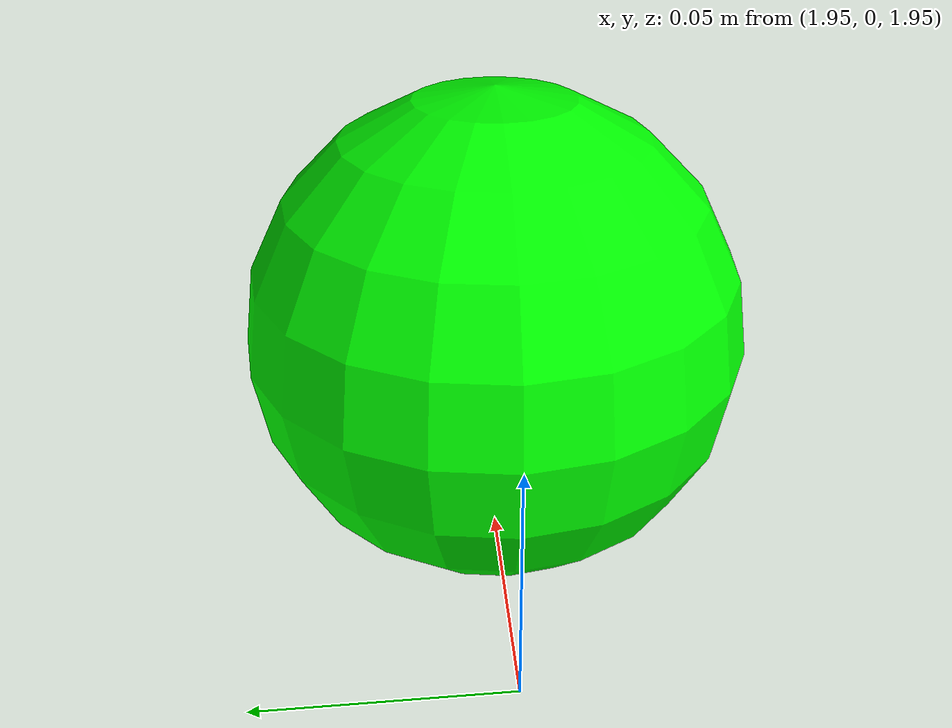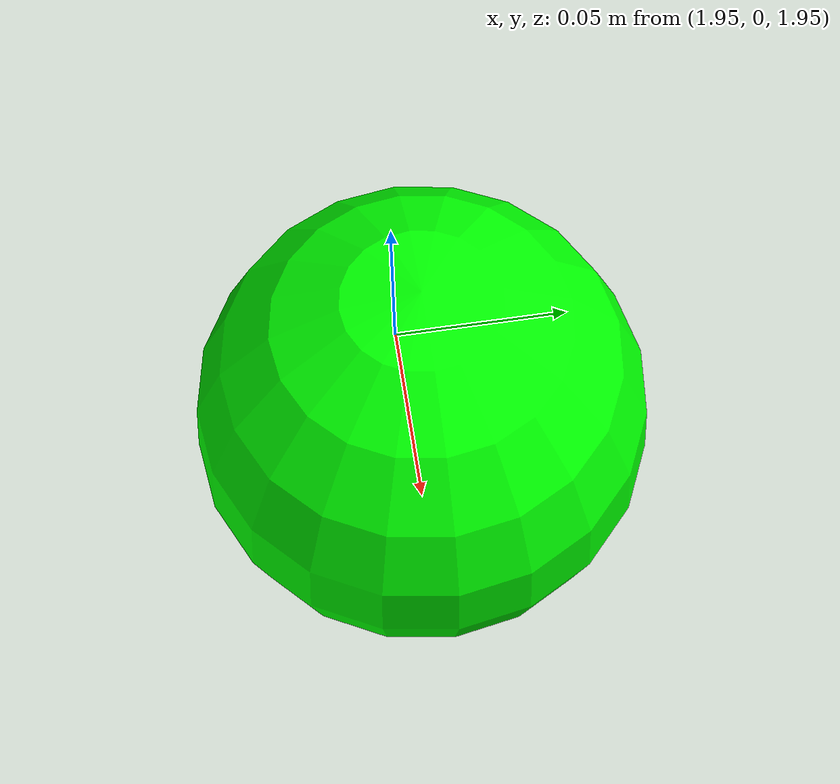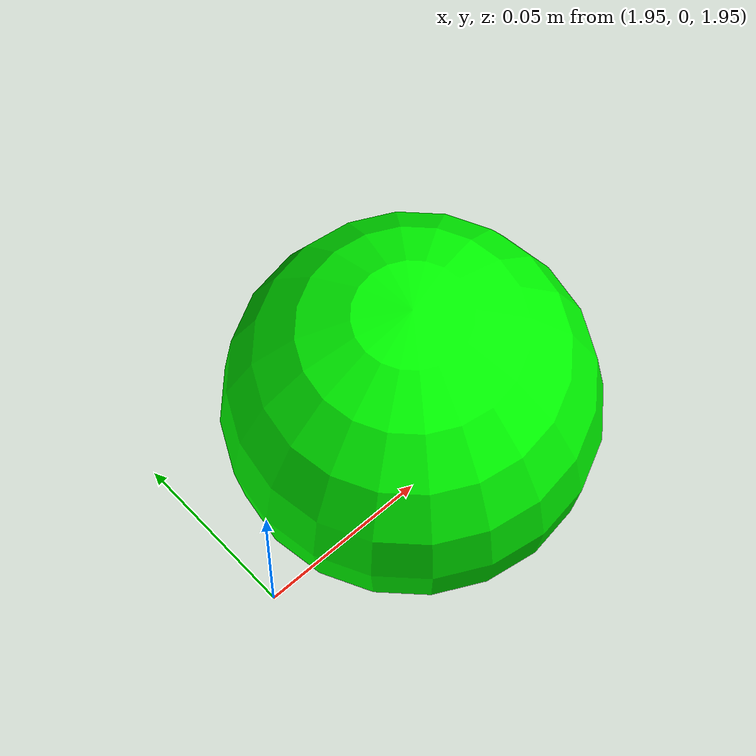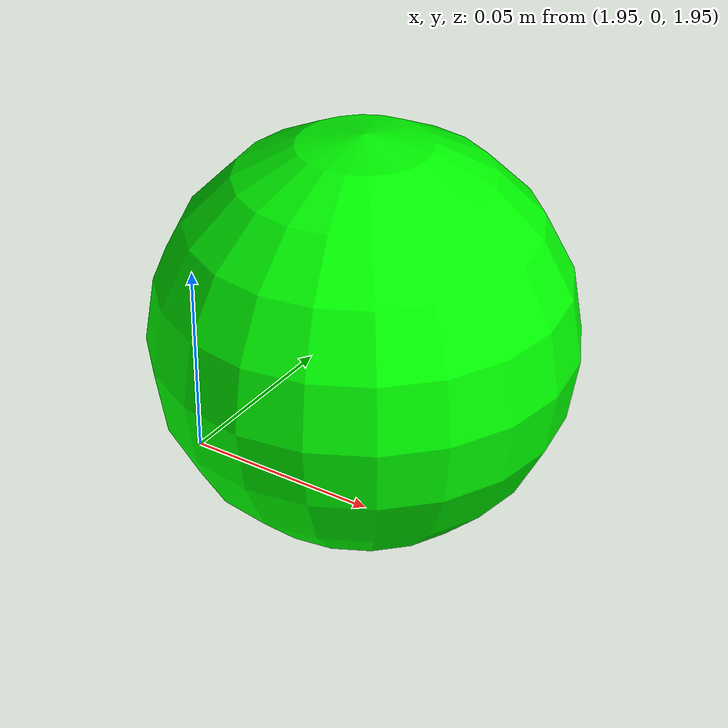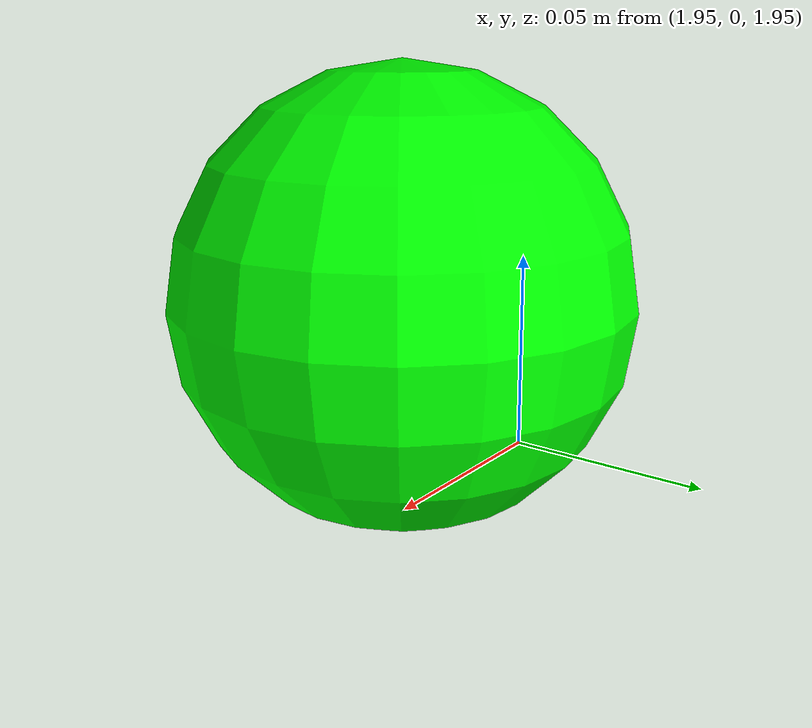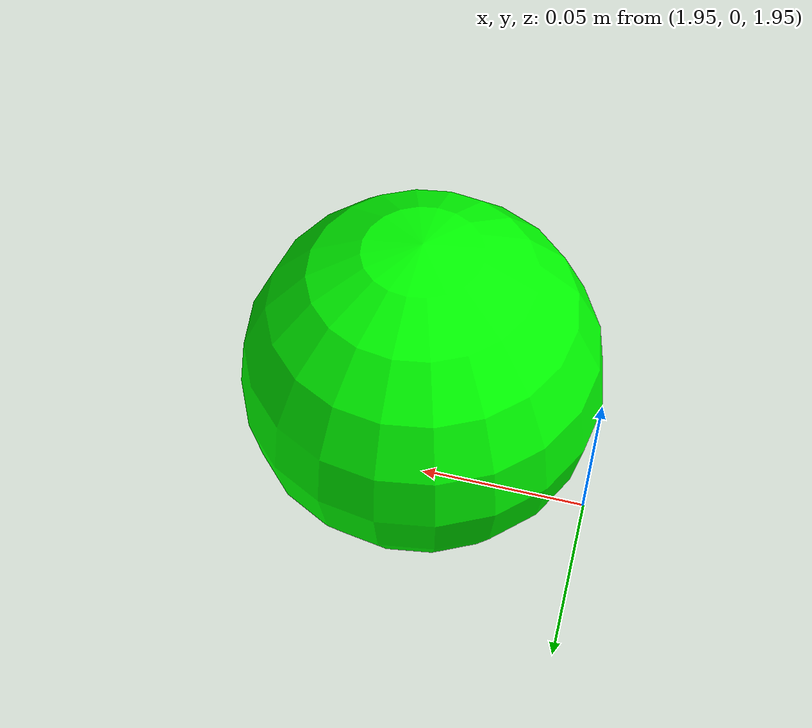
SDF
<?xml version="1.0" ?>
<sdf version="1.6">
  <world name="dustbin_world">

    <!-- gazebo_ros_state: publishes /model_states and provides /set_entity_state -->
    <plugin name="gazebo_ros_state" filename="libgazebo_ros_state.so"/>

    <include>
      <uri>model://sun</uri>
    </include>
    <include>
      <uri>model://ground_plane</uri>
    </include>

    <!-- The "Trash" Ball -->
    <model name="trash_ball">
      <pose>2 0 2 0 0 0</pose>
      <link name="link">
        <inertial>
          <mass>0.1</mass>
        </inertial>
        <visual name="visual">
          <geometry>
            <sphere><radius>0.05</radius></sphere>
          </geometry>
          <material>
            <ambient>0 1 0 1</ambient> <!-- Neon Green -->
            <diffuse>0 1 0 1</diffuse>
          </material>
        </visual>
        <collision name="collision">
          <geometry>
            <sphere><radius>0.05</radius></sphere>
          </geometry>
        </collision>
      </link>
      <!-- No plugin: ball is a free physics object. Initial velocity is set
           at launch time via the /gazebo/set_entity_state service call. -->
    </model>

  </world>
</sdf>
